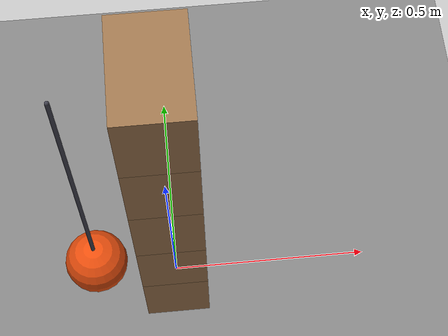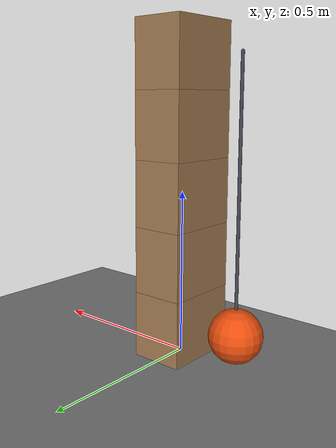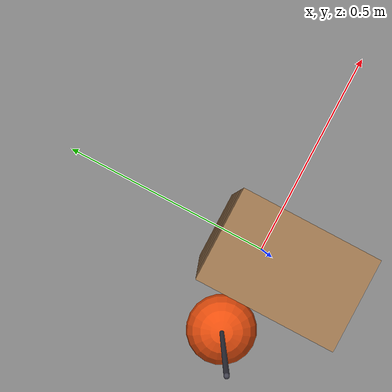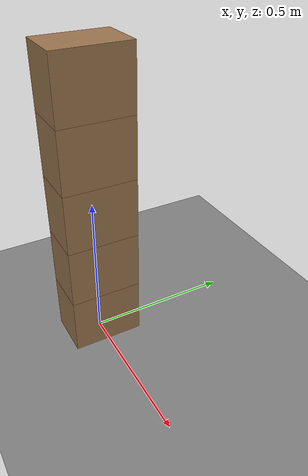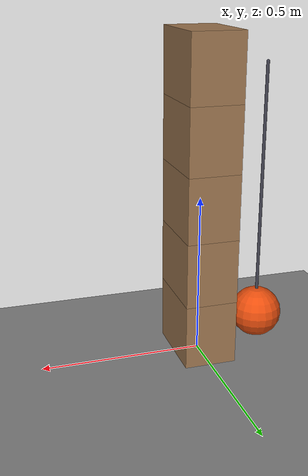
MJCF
<mujoco model="five_blocks_toppled_by_a_pendulum">
  <compiler angle="radian"/>
  <option timestep="0.002"/>
  <worldbody>
    <geom name="floor" type="plane" size="6 6 0.1" friction="0.8 0.005 0.002"/>
    <body name="block1" pos="0 0 0.1">
      <freejoint/>
      <geom name="block1" type="box" pos="0 0 0" size="0.08 0.12 0.1" mass="0.7" friction="0.55 0.005 0.002" solref="0.01 1" rgba="0.6 0.45 0.3 1"/>
    </body>
    <body name="block2" pos="0 0 0.3">
      <freejoint/>
      <geom name="block2" type="box" pos="0 0 0" size="0.08 0.12 0.1" mass="0.7" friction="0.55 0.005 0.002" solref="0.01 1" rgba="0.6 0.45 0.3 1"/>
    </body>
    <body name="block3" pos="0 0 0.5">
      <freejoint/>
      <geom name="block3" type="box" pos="0 0 0" size="0.08 0.12 0.1" mass="0.7" friction="0.55 0.005 0.002" solref="0.01 1" rgba="0.6 0.45 0.3 1"/>
    </body>
    <body name="block4" pos="0 0 0.7">
      <freejoint/>
      <geom name="block4" type="box" pos="0 0 0" size="0.08 0.12 0.1" mass="0.7" friction="0.55 0.005 0.002" solref="0.01 1" rgba="0.6 0.45 0.3 1"/>
    </body>
    <body name="block5" pos="0 0 0.9">
      <freejoint/>
      <geom name="block5" type="box" pos="0 0 0" size="0.08 0.12 0.1" mass="0.7" friction="0.55 0.005 0.002" solref="0.01 1" rgba="0.6 0.45 0.3 1"/>
    </body>
    <body name="pusher" pos="-0.2 0 0.9">
      <joint name="pusher_hinge" type="hinge" pos="0 0 0" axis="0 1 0" limited="true" range="-1.22173 1.22173" damping="0.02"/>
      <geom name="pusher" type="sphere" pos="0 0 -0.8" size="0.08" mass="4" friction="0.5 0.005 0.0001" solref="0.01 1" rgba="0.9 0.3 0.05 1"/>
      <geom name="pendulum rod" type="capsule" size="0.005" fromto="0 0 0 0 0 -0.72" mass="0.08" contype="0" conaffinity="0" rgba="0.25 0.25 0.3 1"/>
    </body>
  </worldbody>
  <keyframe>
    <key name="start" qpos="0 0 0.1 1 0 0 0 0 0 0.3 1 0 0 0 0 0 0.5 1 0 0 0 0 0 0.7 1 0 0 0 0 0 0.9 1 0 0 0 0.785398" qvel="0 0 0 0 0 0 0 0 0 0 0 0 0 0 0 0 0 0 0 0 0 0 0 0 0 0 0 0 0 0 0"/>
  </keyframe>
</mujoco>
